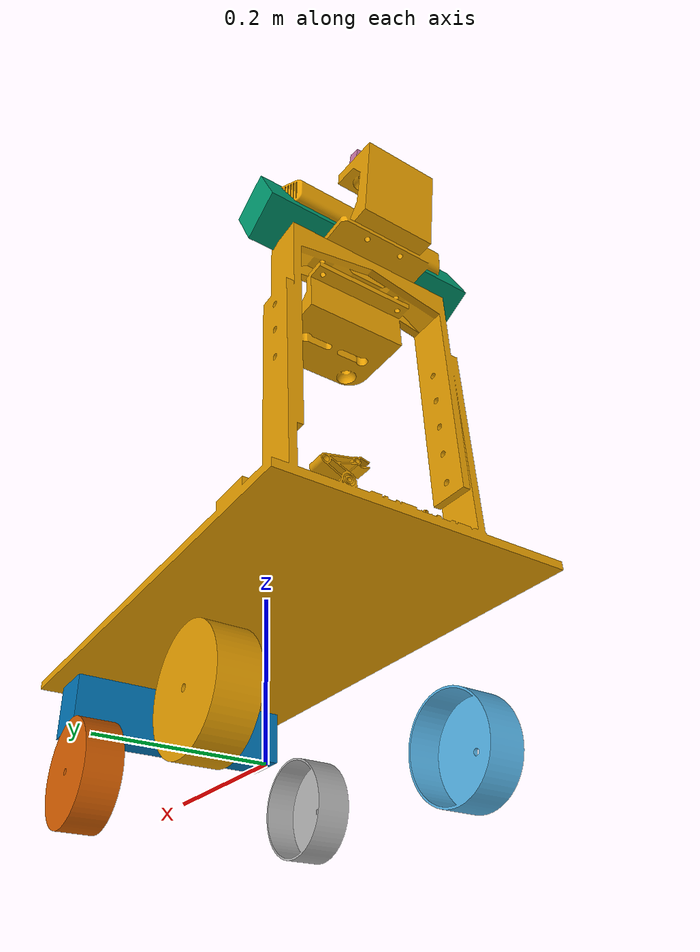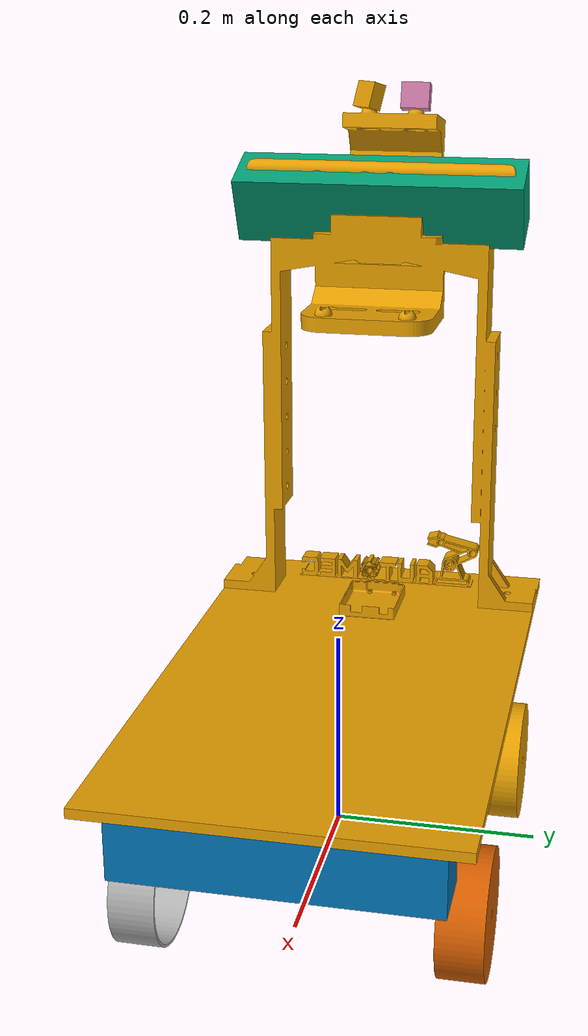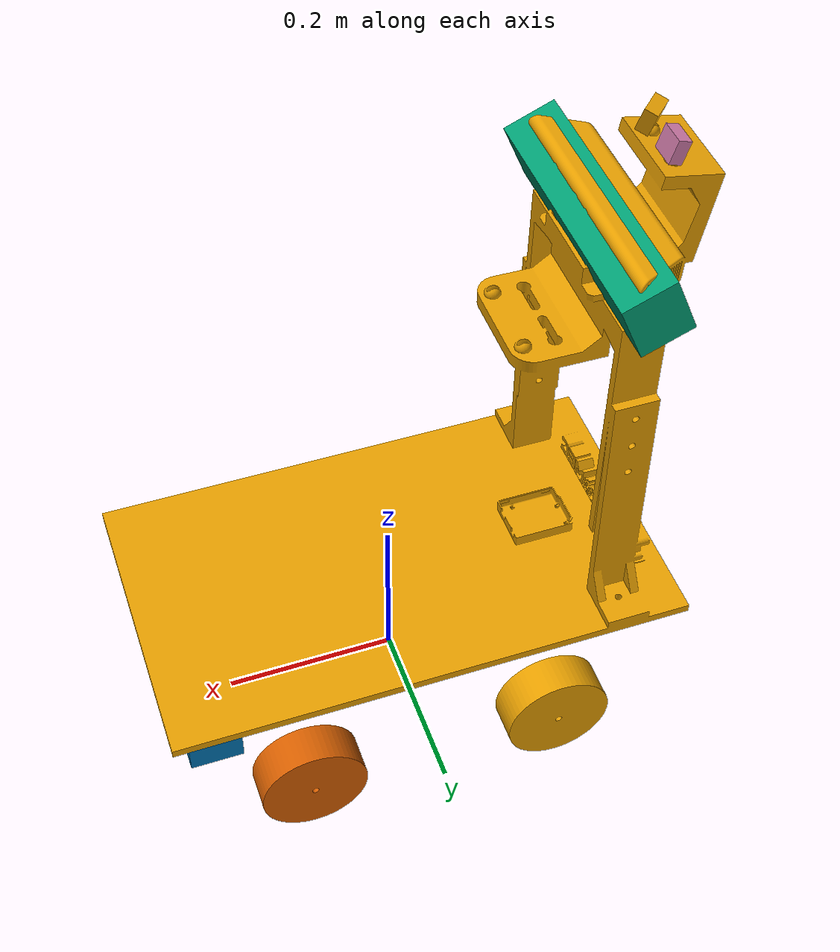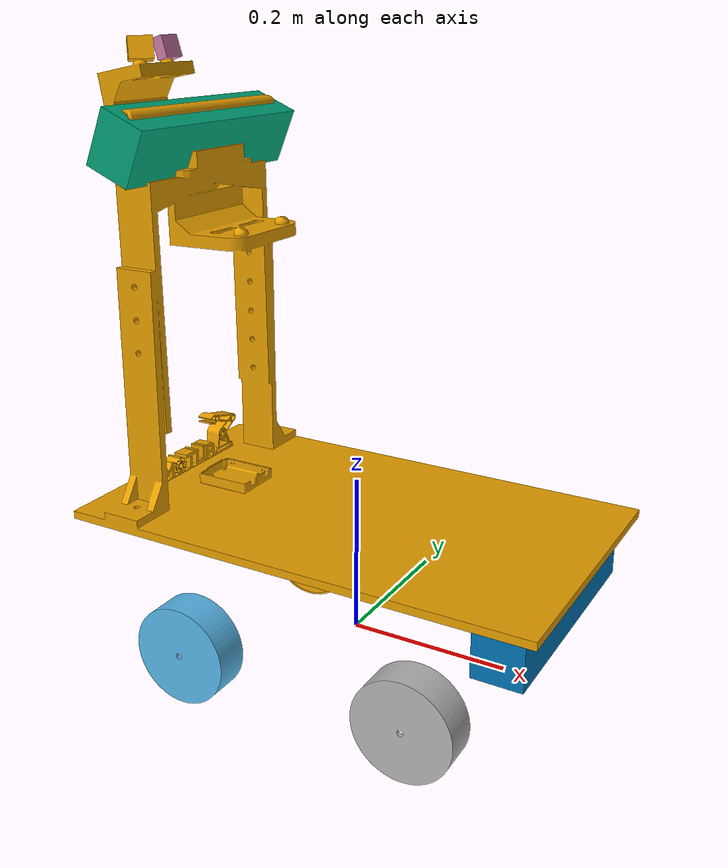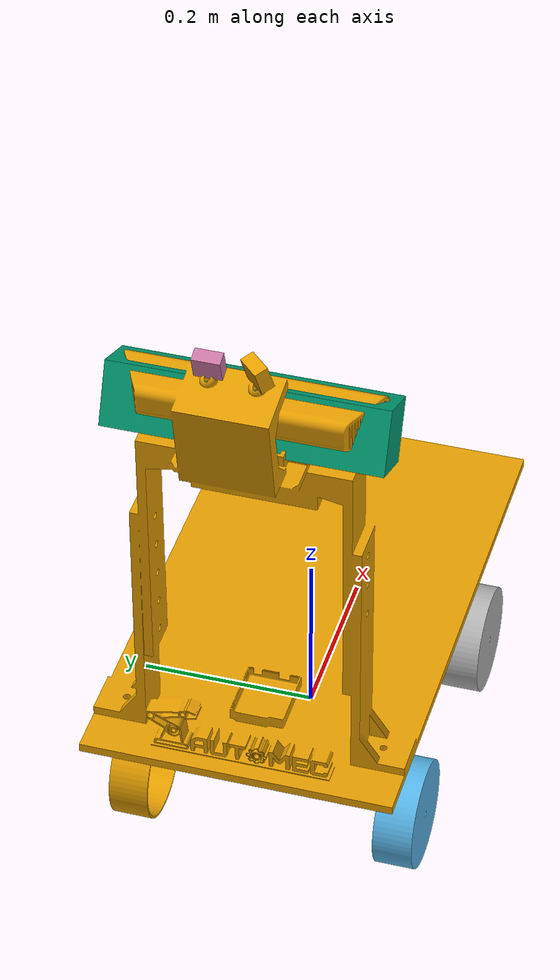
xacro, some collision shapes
<?xml version="1.0"?>
<robot name="prometheus" xmlns:xacro="http://www.ros.org/wiki/xacro">
    <!--
    Robot model taken from http://wiki.ros.org/pr2_mechanism/Tutorials/SImple%20URDF-Controller%20Example
    -->
    <xacro:include filename="$(find prometheus_description)/urdf/prometheus_wheel.urdf.xacro"/>
    <xacro:include filename="$(find prometheus_description)/urdf/prometheus_ackermann_macro.urdf.xacro"/>
    <xacro:include filename="$(find prometheus_description)/urdf/sensors_macro.urdf.xacro"/>
    <xacro:property name="deg_to_rad" value="0.01745329251994329577"/>
    <!-- Constants for robot dimensions -->
    <xacro:property name="length" value="0.6" />
    <xacro:property name="width" value="0.35" />
    <xacro:property name="height" value="0.5"/>
    <xacro:property name="length_offset" value="0"/>
    <xacro:property name="height_offset" value="0"/>
    <xacro:property name="wheel_radius" value="0.06" /> <!-- Link 1 -->
    <xacro:property name="board_height" value="0.15" /> <!-- Link 1 -->
    <xacro:property name="thickness" value="0.032" /> <!-- Link 2 -->
    <!--  we need two because the car isn't a square-->
    <xacro:property name="axel_offset_x" value="0.5" /> <!-- Space btw top of beam and the each joint -->
    <xacro:property name="axel_offset_y" value="0" /> <!-- Space btw top of beam and the each joint -->
    <xacro:property name="steer_offset" value="0.02" /> <!-- Link 1 -->

    <!-- Add car macro -->
    <xacro:prometheus length="${length}" width="${width}" height="${height}" board_height="${board_height}" wheel_radius="${wheel_radius}"/>

    <!-- Add sensors-->
    <xacro:kinect name="top_front_camera" x= "-0.22" y="0" z="0.6" roll="0" pitch="0.4" yaw="0"/>
    <xacro:kinect name="bottom_front_camera" x="0.25" y="0" z="0.115" roll="3.141509" pitch="0" yaw="0"/>
    <xacro:usb_cam name="top_left_camera" x="-0.28" y="0.025" z="0.7" roll="0" pitch="-0.3" yaw="0"/>
    <xacro:usb_cam name="top_right_camera" x="-0.28" y="-0.025" z="0.7" roll="0" pitch="-0.3" yaw="-0.7854"/>

    <!-- Add gazebo functionalities-->
    <xacro:include filename="$(find prometheus_description)/urdf/prometheus.gazebo.macro.xacro"/>

    <!-- joints for ackermann_steering_controller -->
    <xacro:front_steer name="front" parent="base" radius="${wheel_radius}" thickness="${thickness}"
                       length="${length}" width="${width}" axel_offset="${axel_offset_x}" steer_height="${wheel_radius+steer_offset}">
        <origin xyz="${length/2-axel_offset_x} 0 0" rpy="${-90 * deg_to_rad} 0 ${90 * deg_to_rad}"/>
    </xacro:front_steer>
    <xacro:rear_wheel name="rear" parent="base" radius="${wheel_radius}" thickness="${thickness}">
        <origin xyz="${-length/2+axel_offset_x} 0 0" rpy="${-90 * deg_to_rad} 0 ${-90 * deg_to_rad}"/>
    </xacro:rear_wheel>

    <!-- Wheels -->
    <xacro:front_wheel_lr name="front_right" parent="base" radius="${wheel_radius}" thickness="${thickness}"
                          length="${2*length + 0.1}" width="${width}" axel_offset="${axel_offset_x}" right_left="1" steer_height="${wheel_radius+steer_offset}">
        <origin xyz="${length/2-axel_offset_x + 0.05} ${width/2+axel_offset_y} 0" rpy="${-90 * deg_to_rad} 0 0"/>
    </xacro:front_wheel_lr>
    <xacro:front_wheel_lr name="front_left" parent="base" radius="${wheel_radius}" thickness="${thickness}"
                          length="${2*length + 0.1}" width="${width}" axel_offset="${axel_offset_x}" right_left="-1" steer_height="${wheel_radius+steer_offset}">
        <origin xyz="${length/2-axel_offset_x + 0.05} ${-width/2-axel_offset_y} 0" rpy="${-90 * deg_to_rad} 0 0"/>
    </xacro:front_wheel_lr>
    <xacro:rear_wheel_lr name="rear_right" parent="base" radius="${wheel_radius}" right_left="1" thickness="${thickness}">
        <origin xyz="${length/2-axel_offset_x + 0.05} ${width/2+axel_offset_y} 0" rpy="${-90 * deg_to_rad} 0 ${-90 * deg_to_rad}"/>
    </xacro:rear_wheel_lr>
    <xacro:rear_wheel_lr name="rear_left" parent="base" radius="${wheel_radius}" right_left="-1" thickness="${thickness}">
        <origin xyz="${length/2-axel_offset_x + 0.05} ${-width/2-axel_offset_y} 0" rpy="${-90 * deg_to_rad} 0 ${90 * deg_to_rad}"/>
    </xacro:rear_wheel_lr>

    <!-- Gazebo plugin for ROS Control -->
    <gazebo>
        <plugin name="gazebo_ros_control" filename="libgazebo_ros_control.so">
            <robotSimType>steer_bot_hardware_gazebo/SteerBotHardwareGazebo</robotSimType>
        </plugin>
    </gazebo>

    <!-- Colour -->
    <gazebo reference="base_footprint">
        <material>Gazebo/Purple</material>
    </gazebo>

</robot>

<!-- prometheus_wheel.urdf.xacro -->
<robot xmlns:xacro="http://www.ros.org/wiki/xacro">
  <xacro:property name="steer_radius" value="0.05" /> <!-- Link 1 -->
  <xacro:property name="steer_thickness" value="0.02" /> <!-- Link 1 -->
  <xacro:property name="steer_effort"   value="15.0"/>
  <xacro:property name="steer_velocity" value="5.0"/>
  <xacro:property name="mass" value="0.50"/>
  <xacro:property name="damping" value="0"/>
  <xacro:property name="friction" value="0" />

  <xacro:macro name="front_steer" params="name parent radius thickness length width axel_offset steer_height *origin">
    <link name="${name}_steer_link">
      <inertial>
        <origin xyz="0 0 0" rpy="0 0 0"/>
        <mass value="${mass}"/>
        <inertia  ixx="${(mass*((3*wheel_radius*wheel_radius)+(thickness*thickness)))/12}" ixy = "0" ixz = "0"
                  iyy="${(mass*((3*wheel_radius*wheel_radius)+(thickness*thickness)))/12}" iyz = "0"
                  izz="${(mass*wheel_radius*wheel_radius)/2}" />
      </inertial>
      <collision>
        <origin xyz="0 0 0" rpy="0 0 0"/>
        <geometry>
          <cylinder radius="${steer_radius}" length="${steer_thickness}"/>
        </geometry>
      </collision>
    </link>

    <joint name="${name}_steer_joint" type="revolute">
      <parent link="${parent}_link"/>
      <child link="${name}_steer_link"/>
      <origin xyz="${length/2-axel_offset} 0 ${steer_height}" rpy="0 0 0"/>
      <axis xyz="0 0 1"/>
      <limit effort="${steer_effort}"
             lower="${-180.0 * deg_to_rad}" upper="${180.0 * deg_to_rad}"
             velocity="${steer_velocity}"/>
      <dynamics damping="${damping}" friction="${friction}"/>
     </joint>

           <!-- Transmission is important to link the joints and the controller -->
    <transmission name="${name}_steer_joint_trans">
      <type>transmission_interface/SimpleTransmission</type>
      <actuator name="${name}_steer_joint_motor"/>
      <joint name="${name}_steer_joint">
        <hardwareInterface>hardware_interface/PositionJointInterface</hardwareInterface>
        <dynamics damping="${damping}" friction="0.0"/>
      </joint>
      <mechanicalReduction>1</mechanicalReduction>
      <motorTorqueConstant>1</motorTorqueConstant>
    </transmission>
    <gazebo reference="${name}_steer_link">
      <material>Gazebo/Yellow</material>
    </gazebo>
  </xacro:macro>

  <xacro:macro name="front_wheel_lr" params="name parent radius thickness length width axel_offset right_left steer_height *origin">
    <link name="${name}_steer_link">
      <inertial>
        <origin xyz="0 0 0" rpy="0 0 0"/>
        <mass value="${mass}"/>
        <inertia  ixx="${(mass*((3*wheel_radius*wheel_radius)+(thickness*thickness)))/12}" ixy = "0" ixz = "0"
                  iyy="${(mass*((3*wheel_radius*wheel_radius)+(thickness*thickness)))/12}" iyz = "0"
                  izz="${(mass*wheel_radius*wheel_radius)/2}" />
      </inertial>
      <collision>
        <origin xyz="0 0 0" rpy="0 0 0"/>
        <axis xyz="${right_left * -1} 0 0"/>
        <geometry>
          <cylinder radius="${steer_radius}" length="${steer_thickness}"/>
        </geometry>
      </collision>
    </link>

    <joint name="${name}_steer_joint" type="revolute">
      <parent link="${parent}_link"/>
      <child link="${name}_steer_link"/>
      <origin xyz="${length/2-axel_offset_x} ${right_left*(width/2+axel_offset_y)} ${steer_height}" rpy="0 0 0"/>
      <!--xacro:insert_block name="origin"/-->
      <axis xyz="0 0 1"/>
      <dynamics damping="${damping}" friction="${friction}"/>
      <limit effort="${steer_effort}"
             lower="${-180.0 * deg_to_rad}" upper="${180.0 * deg_to_rad}"
             velocity="${steer_velocity}"/>
     </joint>

    <link name="${name}_wheel_link">
      <inertial>
        <origin xyz="0 0 0" rpy="0 0 0"/>
        <mass value="${mass}"/>
        <inertia  ixx="${(mass*((3*wheel_radius*wheel_radius)+(thickness*thickness)))/12}" ixy = "0" ixz = "0"
                  iyy="${(mass*((3*wheel_radius*wheel_radius)+(thickness*thickness)))/12}" iyz = "0"
                  izz="${(mass*wheel_radius*wheel_radius)/2}" />
      </inertial>
      <visual>
        <origin xyz="0 ${wheel_radius} ${wheel_radius}" rpy=" ${90 * deg_to_rad} ${90 * deg_to_rad} 0"/>
        <geometry>
          <mesh filename="file:///$(find prometheus_description)/meshes/wheel.dae"/>
        </geometry>
      </visual>
      <collision>
        <origin xyz="0 0 0" rpy="${-90 * deg_to_rad} 0 ${right_left * -90 * deg_to_rad}"/>-->
        <geometry>
          <cylinder radius="${wheel_radius}" length="${thickness}"/>
        </geometry>
      </collision>
    </link>

    <joint name="${name}_wheel_joint" type="continuous">
      <parent link="${name}_steer_link"/>
      <child link="${name}_wheel_link"/>
      <origin xyz="0 0 ${-steer_height}" rpy="${-90 * deg_to_rad} 0 ${right_left * -90 * deg_to_rad}"/>-->
      <axis xyz="${right_left * -1} 0 0"/>
      <dynamics damping="${damping}" friction="${friction}"/>
    </joint>

    <!-- Transmission is important to link the joints and the controller -->
    <transmission name="${name}_steer_joint_trans">
      <type>transmission_interface/SimpleTransmission</type>
      <actuator name="${name}_steer_joint_motor"/>
      <joint name="${name}_steer_joint">
        <hardwareInterface>hardware_interface/EffortJointInterface</hardwareInterface>
        <dynamics damping="${damping}" friction="${friction}"/>
      </joint>
      <mechanicalReduction>1</mechanicalReduction>
      <motorTorqueConstant>1</motorTorqueConstant>
    </transmission>
    <transmission name="${name}_wheel_joint_trans" >
      <type>transmission_interface/SimpleTransmission</type>
      <actuator name="${name}_wheel_joint_motor"/>
      <joint name="${name}_wheel_joint">
        <hardwareInterface>hardware_interface/EffortJointInterface</hardwareInterface>
        <dynamics damping="${damping}" friction="${friction}"/>
      </joint>
      <mechanicalReduction>1</mechanicalReduction>
      <motorTorqueConstant>1</motorTorqueConstant>
    </transmission>

  </xacro:macro>

  <xacro:macro name="rear_wheel" params="name parent radius thickness *origin">
    <link name="${name}_wheel_link">
      <inertial>
        <origin xyz="0 0 0" rpy="0 0 0"/>
        <mass value="${mass}"/>
        <inertia  ixx="${(mass*((3*wheel_radius*wheel_radius)+(thickness*thickness)))/12}" ixy = "0" ixz = "0"
                  iyy="${(mass*((3*wheel_radius*wheel_radius)+(thickness*thickness)))/12}" iyz = "0"
                  izz="${(mass*wheel_radius*wheel_radius)/2}" />
      </inertial>
      <collision>
        <origin xyz="0 0 0" rpy="0 0 0"/>
        <geometry>
          <cylinder radius="${wheel_radius/100}" length="${thickness/100}"/>
        </geometry>
      </collision>
    </link>

    <joint name="${name}_wheel_joint" type="continuous">
      <parent link="${parent}_link"/>
      <child link="${name}_wheel_link"/>
      <xacro:insert_block name="origin"/>
      <axis xyz="1 0 0"/>
      <dynamics damping="${damping}" friction="${friction}"/>
    </joint>

    <!-- Transmission is important to link the joints and the controller -->
    <transmission name="${name}_wheel_joint_trans" >
      <type>transmission_interface/SimpleTransmission</type>
      <actuator name="${name}_wheel_joint_motor"/>
      <joint name="${name}_wheel_joint">
          <hardwareInterface>hardware_interface/VelocityJointInterface</hardwareInterface>
          <dynamics damping="${damping}" friction="${friction}"/>
      </joint>
      <mechanicalReduction>1</mechanicalReduction>
      <motorTorqueConstant>1</motorTorqueConstant>
    </transmission>
  </xacro:macro>

  <xacro:macro name="rear_wheel_lr" params="name parent radius right_left thickness *origin">
    <link name="${name}_wheel_link">
      <inertial>
        <origin xyz="0 0 0" rpy="0 0 0"/>
        <mass value="${mass}"/>
        <inertia  ixx="${(mass*((3*wheel_radius*wheel_radius)+(thickness*thickness)))/12}" ixy = "0" ixz = "0"
                  iyy="${(mass*((3*wheel_radius*wheel_radius)+(thickness*thickness)))/12}" iyz = "0"
                  izz="${(mass*wheel_radius*wheel_radius)/2}" />
      </inertial>
      <visual>
        <origin xyz="0 ${wheel_radius} ${wheel_radius}" rpy=" ${90 * deg_to_rad} ${90 * deg_to_rad} 0"/>
        <geometry>
            <mesh filename="file:///$(find prometheus_description)/meshes/wheel.dae"/>
        </geometry>
      </visual>
      <collision>
        <origin xyz="0 0 0" rpy="${-90 * deg_to_rad} 0 ${right_left * -90 * deg_to_rad}"/>-->
        <geometry>
          <cylinder radius="${wheel_radius}" length="${thickness}"/>
        </geometry>
      </collision>
    </link>

    <joint name="${name}_wheel_joint" type="continuous">
      <parent link="${parent}_link"/>
      <child link="${name}_wheel_link"/>
      <xacro:insert_block name="origin"/>
      <axis xyz="${right_left * -1} 0 0"/>
      <dynamics damping="${damping}" friction="${friction}"/>
    </joint>

    <!-- Transmission is important to link the joints and the controller -->
    <transmission name="${name}_wheel_joint_trans" >
      <type>transmission_interface/SimpleTransmission</type>
      <actuator name="${name}_wheel_joint_motor"/>
      <joint name="${name}_wheel_joint">
          <hardwareInterface>hardware_interface/EffortJointInterface</hardwareInterface>
          <dynamics damping="${damping}" friction="${friction}"/>
      </joint>
      <mechanicalReduction>1</mechanicalReduction>
      <motorTorqueConstant>1</motorTorqueConstant>
    </transmission>
  </xacro:macro>
</robot>

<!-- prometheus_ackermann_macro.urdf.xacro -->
<robot xmlns:xacro="http://www.ros.org/wiki/xacro">
    <xacro:property name="deg_to_rad" value="0.01745329251994329577"/>
    <xacro:macro name="prometheus" params="length width wheel_radius board_height height">
        <!-- Links: inertial,visual,collision -->
        <link name="base_link">
            <inertial>
                <!-- origin is relative -->
                <origin xyz="0 0 0" rpy="0 0 0"/>
                <mass value="2"/>
                <inertia ixx="1" ixy="0" ixz="0"
                        iyy="1" iyz="0"
                        izz="1"/>
            </inertial>
            <visual>
                <origin xyz="${length/2} ${-width/2} ${board_height}" rpy="${90 * deg_to_rad} 0 ${180 * deg_to_rad}"/>
                <geometry>
                    <mesh filename="file:///$(find prometheus_description)/meshes/chassis.dae"/>
                </geometry>
            </visual>
            <collision>
                <!-- origin is relative -->
                <origin xyz=" 0 0 ${-wheel_radius + height/2}"/>
                <geometry>
                    <box size="${length} ${width} ${height/2}"/>
                </geometry>
            </collision>
        </link>

        <link name="base_footprint">
            <collision>
                <origin xyz="0 0 0"/>
                <geometry>
                    <sphere radius="0.00000001"/>
                </geometry>
            </collision>
        </link>
        <joint name="base_footprint_joint" type="fixed">
            <origin xyz="0 0 0" rpy="0 0 0"/>
            <child link="base_link"/>
            <parent link="base_footprint"/>
        </joint>
    </xacro:macro>

</robot>

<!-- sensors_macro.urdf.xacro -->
<robot xmlns:xacro="http://www.ros.org/wiki/xacro">
    <xacro:macro name="kinect" params="name x y z roll pitch yaw">
        <joint name="${name}_joint" type="fixed">
            <origin xyz="${x} ${y} ${z}" rpy="${roll} ${pitch} ${yaw}"/>
            <parent link="base_link"/>
            <child link="${name}_link"/>
        </joint>

        <link name="${name}_link">
            <origin xyz="0 0 0" rpy="0 0 0"/>
            <visual>
                <origin xyz="0 0 0" rpy="0 0 1.5708"/>
                <geometry>
                    <mesh filename="package://prometheus_description/meshes/kinect.dae"/>
                </geometry>
            </visual>
            <collision>
                <geometry>
                    <box size="0.06 0.30 0.07"/>
                </geometry>
            </collision>
        </link>

        <joint name="${name}_optical_joint" type="fixed">
            <origin xyz="0 0 0" rpy="-1.5708 0 -1.5708"/>
            <parent link="${name}_link"/>
            <child link="${name}_optical_frame"/>
        </joint>

        <link name="${name}_optical_frame"/>
    </xacro:macro>

    <xacro:macro name="usb_cam" params="name x y z roll pitch yaw">
        <joint name="${name}_joint" type="fixed">
            <origin xyz="${x} ${y} ${z}" rpy="${roll} ${pitch} ${yaw}"/>
            <parent link="base_link"/>
            <child link="${name}_link"/>
        </joint>

        <link name="${name}_link">
            <visual>
                <geometry>
                    <box size="0.015 0.030 0.027"/>
                </geometry>
            </visual>
            <collision>
                <origin xyz="0.0 0.0 0.0" rpy="0 0 0"/>
                <geometry>
                    <box size="0.015 0.030 0.027"/>
                </geometry>
            </collision>
        </link>

        <joint name="${name}_rgb_optical_joint" type="fixed">
            <origin xyz="0 0 0" rpy="-1.5708 0 -1.5708"/>
            <parent link="${name}_link"/>
            <child link="${name}_rgb_optical_frame"/>
        </joint>
        <link name="${name}_rgb_optical_frame"/>
    </xacro:macro>

</robot>
